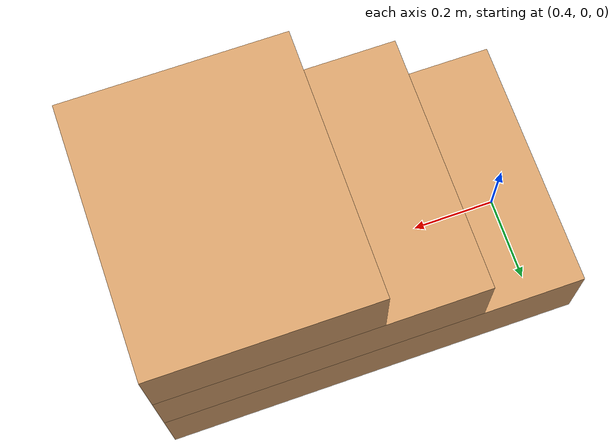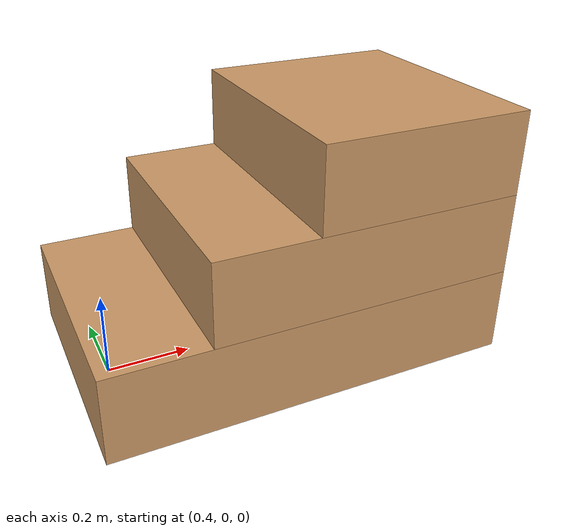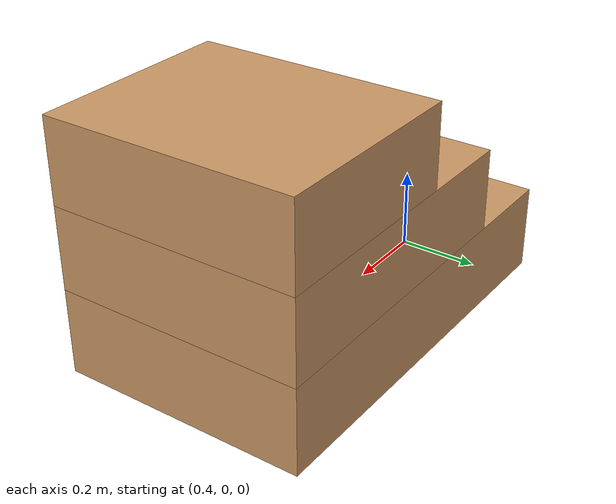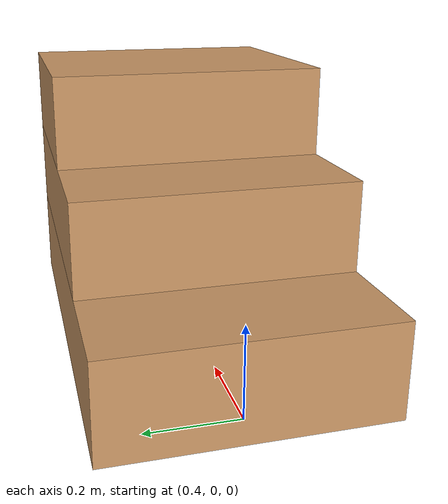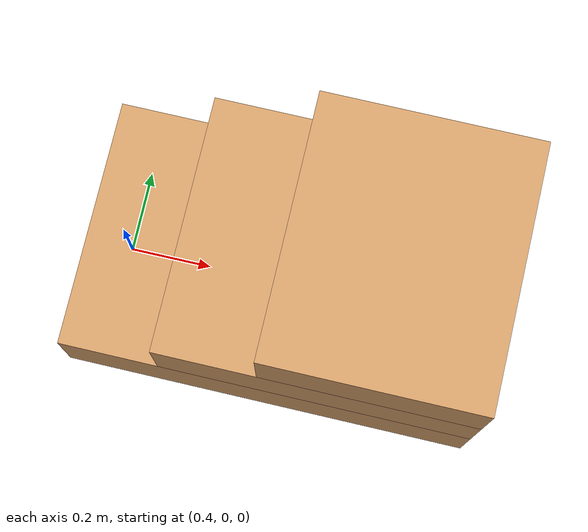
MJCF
<mujoco model="stair">
  <worldbody>
    <body name="stair" pos="1.3 -0.0 0" quat="0 0 0 1">
        <freejoint name="stair_root" />
        <geom name="step1" type="box"
            size="0.49 0.3 0.105"
            pos="0.49 0 0.105"
            material="wood" condim="3" contype="1" conaffinity="1"/>

        <geom name="step2" type="box"
            size="0.37 0.3 0.10"
            pos="0.37 0 0.31"
            material="wood" condim="3" contype="1" conaffinity="1"/>

        <geom name="step3" type="box"
            size="0.25 0.3 0.10"
            pos="0.25 0 0.51"
            material="wood" condim="3" contype="1" conaffinity="1"/>
    </body>
  </worldbody>

  <asset>
    <material name="wood" rgba="0.8 0.6 0.4 1"/>
  </asset>

  <sensor>
    <framepos name="stair_pos" objtype="xbody" objname="stair"/>
    <framequat name="stair_quat" objtype="xbody" objname="stair"/>
  </sensor>
</mujoco>
